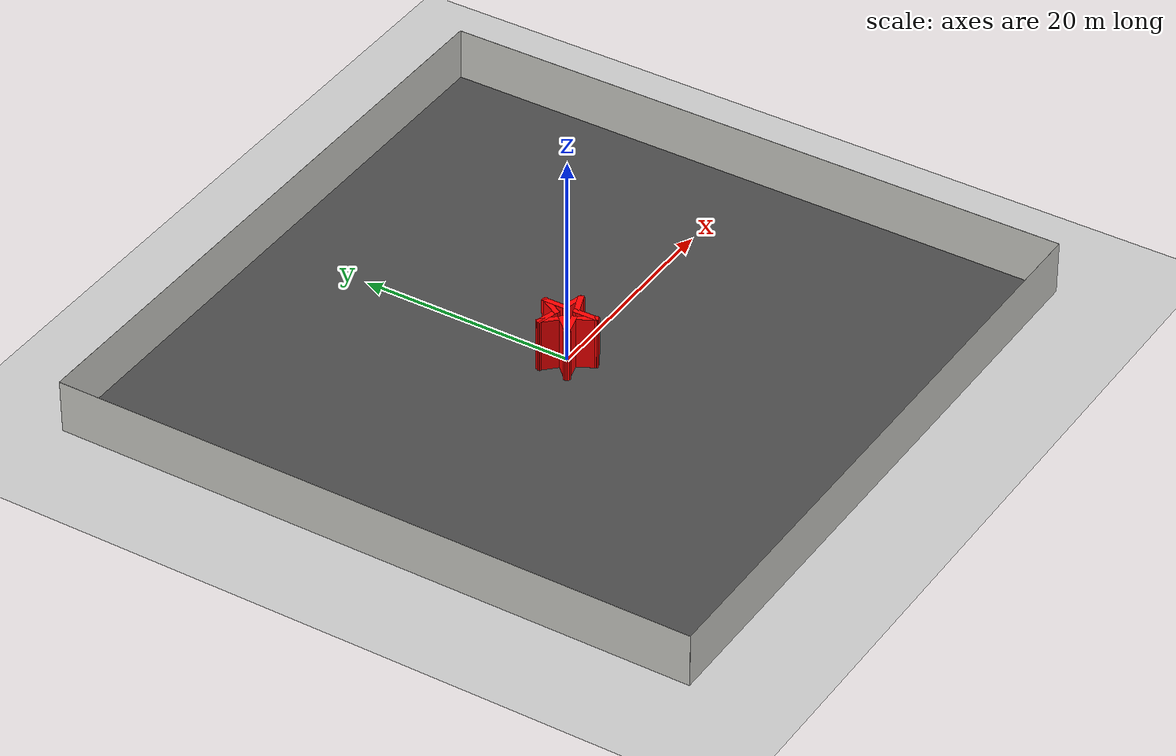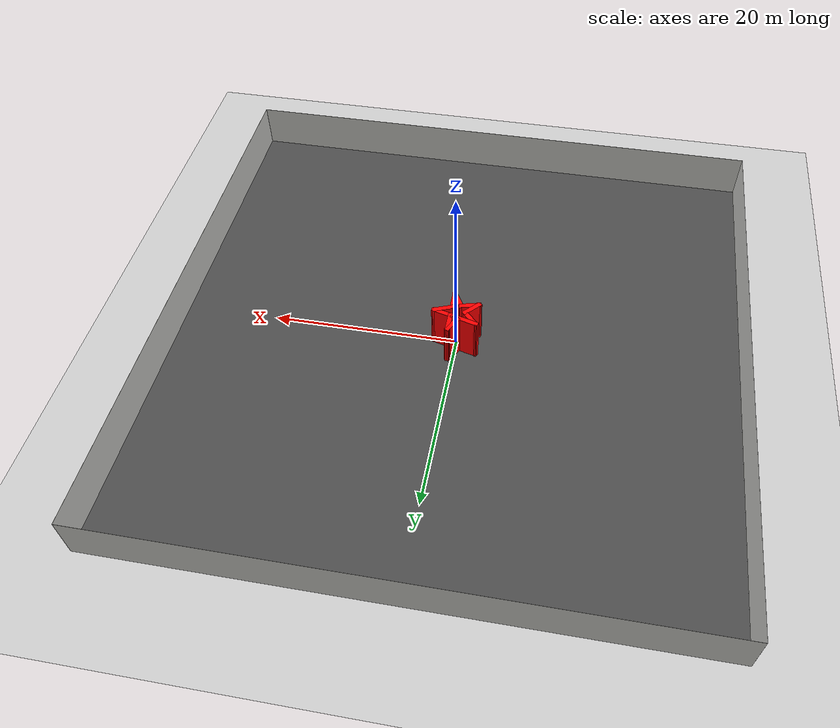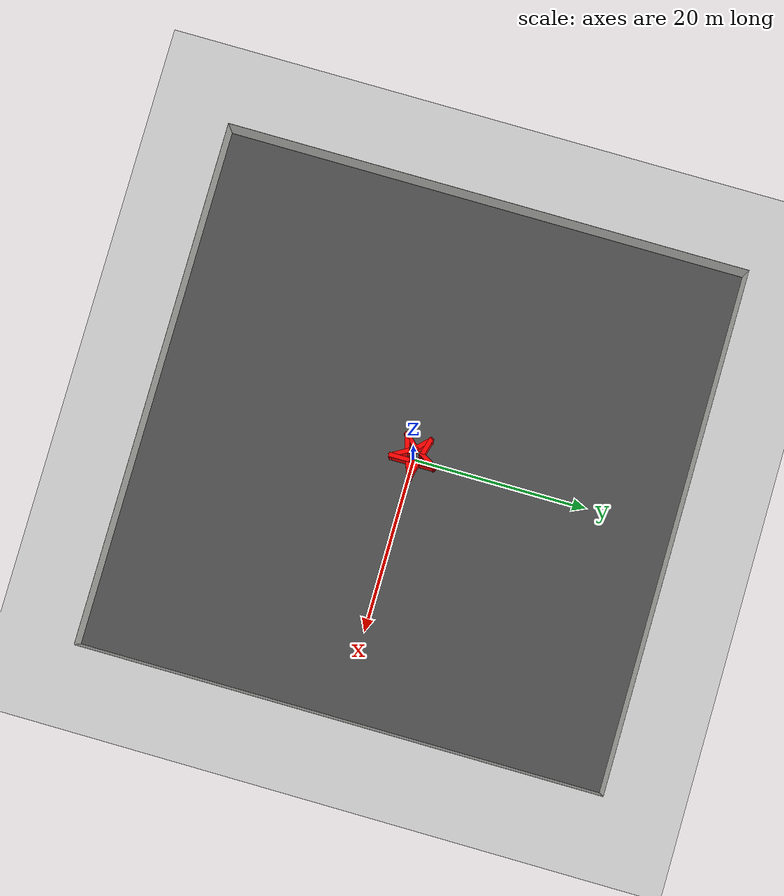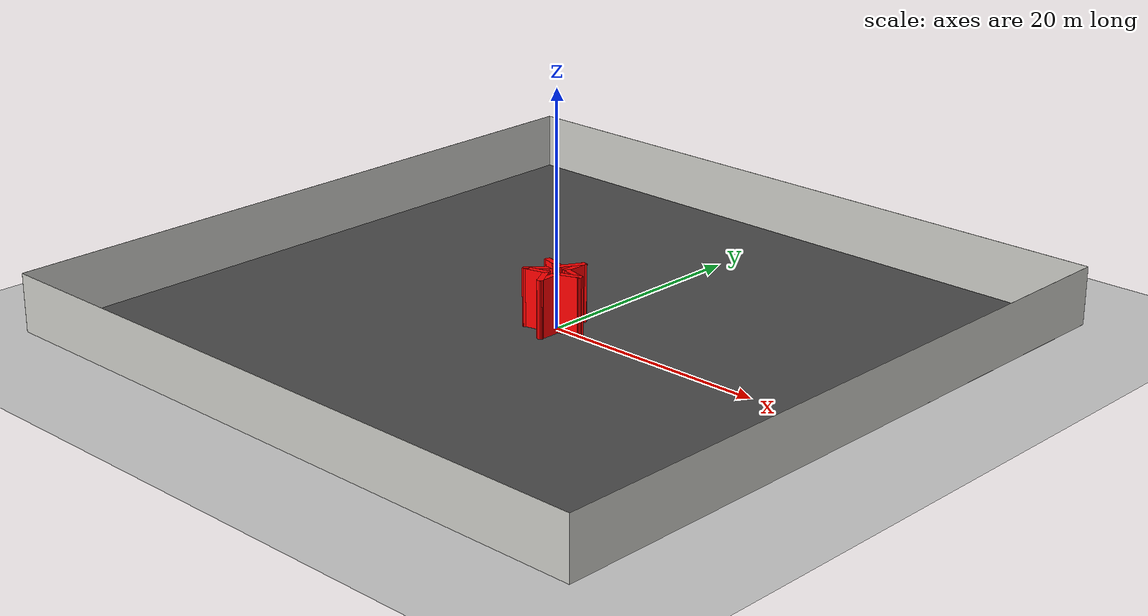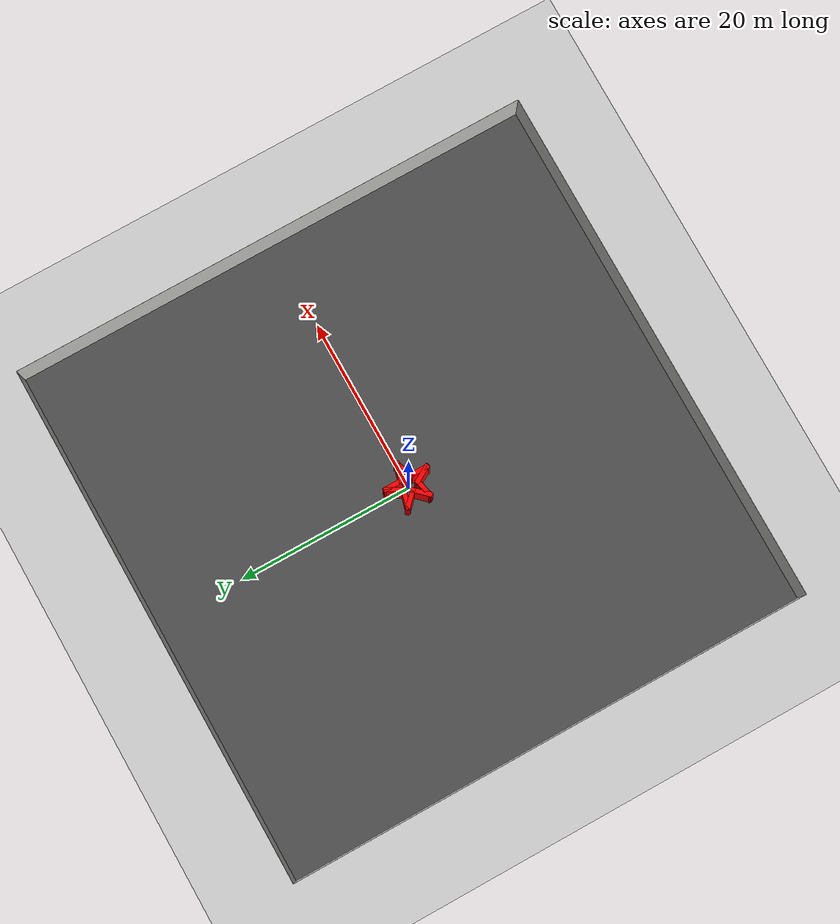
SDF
<sdf version="1.6">
 <world name="default">
  <light name="sun" type="directional">
   <pose>0 0 10 0 -0 0</pose>
   <diffuse>0.8 0.8 0.8 1</diffuse>
   <specular>0.1 0.1 0.1 1</specular>
   <attenuation>
    <range>1000</range>
    <constant>0.9</constant>
    <linear>0.01</linear>
    <quadratic>0.001</quadratic>
   </attenuation>
   <direction>-0.5 0.5 -1</direction>
  </light>
  <model name="ground_plane">
   <static>1</static>
   <link name="link">
    <collision name="collision">
     <geometry><plane><normal>0 0 1</normal><size>100 100</size></plane></geometry>
     <surface><friction><ode><mu>100</mu><mu2>50</mu2></ode></friction></surface>
    </collision>
    <visual name="visual">
     <cast_shadows>0</cast_shadows>
     <geometry><plane><normal>0 0 1</normal><size>100 100</size></plane></geometry>
     <material>
      <script><uri>file://media/materials/scripts/gazebo.material</uri><name>Gazebo/Grey</name></script>
     </material>
    </visual>
   </link>
  </model>
  <gravity>0 0 -9.8</gravity>
  <magnetic_field>6e-06 2.3e-05 -4.2e-05</magnetic_field>
  <atmosphere type="adiabatic"/>
  <physics name="default_physics" default="0" type="ode">
   <max_step_size>0.01</max_step_size>
   <real_time_factor>1</real_time_factor>
   <real_time_update_rate>100</real_time_update_rate>
  </physics>
  <scene><ambient>0.4 0.4 0.4 1</ambient><background>0.7 0.7 0.7 1</background><shadows>0</shadows></scene>
  <spherical_coordinates>
   <surface_model>EARTH_WGS84</surface_model>
   <latitude_deg>0</latitude_deg>
   <longitude_deg>0</longitude_deg>
   <elevation>0</elevation>
   <heading_deg>0</heading_deg>
  </spherical_coordinates>
  <model name="190815_star">
   <pose>2e-06 -6e-06 0 0 -0 -1.57</pose>
   <link name="Wall_26">
    <collision name="Wall_26_Collision">
     <geometry><box><size>2.34777 0.5 5</size></box></geometry>
     <pose>0 0 2.5 0 -0 0</pose>
    </collision>
    <visual name="Wall_26_Visual">
     <pose>0 0 2.5 0 -0 0</pose>
     <geometry><box><size>2.34777 0.5 5</size></box></geometry>
     <material>
      <script><uri>file://media/materials/scripts/gazebo.material</uri><name>Gazebo/Grey</name></script>
      <ambient>1 0 0 1</ambient>
     </material>
     <meta><layer>0</layer></meta>
    </visual>
    <pose>-0.351625 1.37609 0 0 -0 -1.82798</pose>
   </link>
   <link name="Wall_27">
    <collision name="Wall_27_Collision">
     <geometry><box><size>2.35 0.5 5</size></box></geometry>
     <pose>0 0 2.5 0 -0 0</pose>
    </collision>
    <visual name="Wall_27_Visual">
     <pose>0 0 2.5 0 -0 0</pose>
     <geometry><box><size>2.35 0.5 5</size></box></geometry>
     <material>
      <script><uri>file://media/materials/scripts/gazebo.material</uri><name>Gazebo/Grey</name></script>
      <ambient>1 0 0 1</ambient>
     </material>
     <meta><layer>0</layer></meta>
    </visual>
    <pose>-1.51162 0.482594 0 0 -0 3.14159</pose>
   </link>
   <link name="Wall_28">
    <collision name="Wall_28_Collision">
     <geometry><box><size>2.34987 0.5 5</size></box></geometry>
     <pose>0 0 2.5 0 -0 0</pose>
    </collision>
    <visual name="Wall_28_Visual">
     <pose>0 0 2.5 0 -0 0</pose>
     <geometry><box><size>2.34987 0.5 5</size></box></geometry>
     <material>
      <script><uri>file://media/materials/scripts/gazebo.material</uri><name>Gazebo/Grey</name></script>
      <ambient>1 0 0 1</ambient>
     </material>
     <meta><layer>0</layer></meta>
    </visual>
    <pose>-1.63562 0.020094 0 0 -0 -0.523639</pose>
   </link>
   <link name="Wall_29">
    <collision name="Wall_29_Collision">
     <geometry><box><size>2.35975 0.5 5</size></box></geometry>
     <pose>0 0 2.5 0 -0 0</pose>
    </collision>
    <visual name="Wall_29_Visual">
     <pose>0 0 2.5 0 -0 0</pose>
     <geometry><box><size>2.35975 0.5 5</size></box></geometry>
     <material>
      <script><uri>file://media/materials/scripts/gazebo.material</uri><name>Gazebo/Grey</name></script>
      <ambient>1 0 0 1</ambient>
     </material>
     <meta><layer>0</layer></meta>
    </visual>
    <pose>-1.07412 -1.34091 0 0 -0 -1.83129</pose>
   </link>
   <link name="Wall_30">
    <collision name="Wall_30_Collision">
     <geometry><box><size>2.35759 0.5 5</size></box></geometry>
     <pose>0 0 2.5 0 -0 0</pose>
    </collision>
    <visual name="Wall_30_Visual">
     <pose>0 0 2.5 0 -0 0</pose>
     <geometry><box><size>2.35759 0.5 5</size></box></geometry>
     <material>
      <script><uri>file://media/materials/scripts/gazebo.material</uri><name>Gazebo/Grey</name></script>
      <ambient>1 0 0 1</ambient>
     </material>
     <meta><layer>0</layer></meta>
    </visual>
    <pose>-0.659625 -1.57991 0 0 -0 0.789585</pose>
   </link>
   <link name="Wall_31">
    <collision name="Wall_31_Collision">
     <geometry><box><size>2.33721 0.5 5</size></box></geometry>
     <pose>0 0 2.5 0 -0 0</pose>
    </collision>
    <visual name="Wall_31_Visual">
     <pose>0 0 2.5 0 -0 0</pose>
     <geometry><box><size>2.33721 0.5 5</size></box></geometry>
     <material>
      <script><uri>file://media/materials/scripts/gazebo.material</uri><name>Gazebo/Grey</name></script>
      <ambient>1 0 0 1</ambient>
     </material>
     <meta><layer>0</layer></meta>
    </visual>
    <pose>0.663375 -1.54991 0 0 -0 -0.754988</pose>
   </link>
   <link name="Wall_32">
    <collision name="Wall_32_Collision">
     <geometry><box><size>2.33785 0.5 5</size></box></geometry>
     <pose>0 0 2.5 0 -0 0</pose>
    </collision>
    <visual name="Wall_32_Visual">
     <pose>0 0 2.5 0 -0 0</pose>
     <geometry><box><size>2.33785 0.5 5</size></box></geometry>
     <material>
      <script><uri>file://media/materials/scripts/gazebo.material</uri><name>Gazebo/Grey</name></script>
      <ambient>1 0 0 1</ambient>
     </material>
     <meta><layer>0</layer></meta>
    </visual>
    <pose>1.09788 -1.29091 0 0 -0 1.82884</pose>
   </link>
   <link name="Wall_33">
    <collision name="Wall_33_Collision">
     <geometry><box><size>2.31927 0.5 5</size></box></geometry>
     <pose>0 0 2.5 0 -0 0</pose>
    </collision>
    <visual name="Wall_33_Visual">
     <pose>0 0 2.5 0 -0 0</pose>
     <geometry><box><size>2.31927 0.5 5</size></box></geometry>
     <material>
      <script><uri>file://media/materials/scripts/gazebo.material</uri><name>Gazebo/Grey</name></script>
      <ambient>1 0 0 1</ambient>
     </material>
     <meta><layer>0</layer></meta>
    </visual>
    <pose>1.64987 0.054594 0 0 -0 0.526373</pose>
   </link>
   <link name="Wall_34">
    <collision name="Wall_34_Collision">
     <geometry><box><size>2.36903 0.5 5</size></box></geometry>
     <pose>0 0 2.5 0 -0 0</pose>
    </collision>
    <visual name="Wall_34_Visual">
     <pose>0 0 2.5 0 -0 0</pose>
     <geometry><box><size>2.36903 0.5 5</size></box></geometry>
     <material>
      <script><uri>file://media/materials/scripts/gazebo.material</uri><name>Gazebo/Grey</name></script>
      <ambient>1 0 0 1</ambient>
     </material>
     <meta><layer>0</layer></meta>
    </visual>
    <pose>1.50188 0.506594 0 0 -0 -3.13624</pose>
   </link>
   <link name="Wall_35">
    <collision name="Wall_35_Collision">
     <geometry><box><size>2.3957 0.5 5</size></box></geometry>
     <pose>0 0 2.5 0 -0 0</pose>
    </collision>
    <visual name="Wall_35_Visual">
     <pose>0 0 2.5 0 -0 0</pose>
     <geometry><box><size>2.3957 0.5 5</size></box></geometry>
     <material>
      <script><uri>file://media/materials/scripts/gazebo.material</uri><name>Gazebo/Grey</name></script>
      <ambient>1 0 0 1</ambient>
     </material>
     <meta><layer>0</layer></meta>
    </visual>
    <pose>0.225375 1.38559 0 0 -0 1.93994</pose>
   </link>
   <static>1</static>
  </model>
  <model name="wall_60m">
   <link name="Wall_10">
    <collision name="Wall_10_Collision">
     <geometry><box><size>60.01 0.01 5</size></box></geometry>
     <pose>0 0 2.5 0 -0 0</pose>
    </collision>
    <visual name="Wall_10_Visual">
     <pose>0 0 2.5 0 -0 0</pose>
     <geometry><box><size>60.01 0.01 5</size></box></geometry>
     <material>
      <script><uri>file://media/materials/scripts/gazebo.material</uri><name>Gazebo/CeilingTiled</name></script>
      <ambient>1 1 1 1</ambient>
     </material>
     <meta><layer>0</layer></meta>
    </visual>
    <pose>-0.0175 30 0 0 -0 0</pose>
   </link>
   <link name="Wall_11">
    <collision name="Wall_11_Collision">
     <geometry><box><size>60.01 0.01 5</size></box></geometry>
     <pose>0 0 2.5 0 -0 0</pose>
    </collision>
    <visual name="Wall_11_Visual">
     <pose>0 0 2.5 0 -0 0</pose>
     <geometry><box><size>60.01 0.01 5</size></box></geometry>
     <material>
      <script><uri>file://media/materials/scripts/gazebo.material</uri><name>Gazebo/CeilingTiled</name></script>
      <ambient>1 1 1 1</ambient>
     </material>
     <meta><layer>0</layer></meta>
    </visual>
    <pose>30 0 0 0 -0 -1.57021</pose>
   </link>
   <link name="Wall_12">
    <collision name="Wall_12_Collision">
     <geometry><box><size>60.045 0.01 5</size></box></geometry>
     <pose>0 0 2.5 0 -0 0</pose>
    </collision>
    <visual name="Wall_12_Visual">
     <pose>0 0 2.5 0 -0 0</pose>
     <geometry><box><size>60.045 0.01 5</size></box></geometry>
     <material>
      <script><uri>file://media/materials/scripts/gazebo.material</uri><name>Gazebo/CeilingTiled</name></script>
      <ambient>1 1 1 1</ambient>
     </material>
     <meta><layer>0</layer></meta>
    </visual>
    <pose>0 -30 0 0 -0 3.14159</pose>
   </link>
   <link name="Wall_13">
    <collision name="Wall_13_Collision">
     <geometry><box><size>60.01 0.01 5</size></box></geometry>
     <pose>0 0 2.5 0 -0 0</pose>
    </collision>
    <visual name="Wall_13_Visual">
     <pose>0 0 2.5 0 -0 0</pose>
     <geometry><box><size>60.01 0.01 5</size></box></geometry>
     <material>
      <script><uri>file://media/materials/scripts/gazebo.material</uri><name>Gazebo/CeilingTiled</name></script>
      <ambient>1 1 1 1</ambient>
     </material>
     <meta><layer>0</layer></meta>
    </visual>
    <pose>-30.0175 0 0 0 -0 1.5708</pose>
   </link>
   <static>1</static>
  </model>
  <model name="floor_60m">
   <link name="link">
    <inertial>
     <mass>1</mass>
     <inertia><ixx>1</ixx><ixy>0</ixy><ixz>0</ixz><iyy>1</iyy><iyz>0</iyz><izz>1</izz></inertia>
    </inertial>
    <visual name="visual">
     <cast_shadows>0</cast_shadows>
     <geometry><box><size>60 60 0.01</size></box></geometry>
     <material>
      <script>
       <uri>model://asphalt_plane/materials/scripts</uri>
       <uri>model://asphalt_plane/materials/textures</uri>
       <name>vrc/asphalt</name>
      </script>
      <ambient>0.45 0.36 0.19 0.5</ambient>
      <diffuse>0.45 0.36 0.19 0.5</diffuse>
      <specular>0.45 0.36 0.19 0.5</specular>
      <emissive>0.45 0.36 0.19 0.5</emissive>
      <shader type="vertex"><normal_map>__default__</normal_map></shader>
     </material>
    </visual>
    <collision name="collision">
     <geometry><box><size>60 60 0.01</size></box></geometry>
     <surface>
      <friction>
       <ode><mu>1</mu><mu2>1</mu2><fdir1>0 0 0</fdir1><slip1>0</slip1><slip2>0</slip2></ode>
       <torsional>
        <coefficient>1</coefficient>
        <patch_radius>0</patch_radius>
        <surface_radius>0</surface_radius>
        <use_patch_radius>1</use_patch_radius>
        <ode><slip>0</slip></ode>
       </torsional>
      </friction>
      <bounce><restitution_coefficient>0</restitution_coefficient><threshold>1e+06</threshold></bounce>
      <contact>
       <collide_without_contact>0</collide_without_contact>
       <collide_without_contact_bitmask>1</collide_without_contact_bitmask>
       <collide_bitmask>1</collide_bitmask>
       <ode>
        <soft_cfm>0</soft_cfm>
        <soft_erp>0.2</soft_erp>
        <kp>1e+13</kp>
        <kd>1</kd>
        <max_vel>0.01</max_vel>
        <min_depth>0</min_depth>
       </ode>
       <bullet>
        <split_impulse>1</split_impulse>
        <split_impulse_penetration_threshold>-0.01</split_impulse_penetration_threshold>
        <soft_cfm>0</soft_cfm>
        <soft_erp>0.2</soft_erp>
        <kp>1e+13</kp>
        <kd>1</kd>
       </bullet>
      </contact>
     </surface>
    </collision>
   </link>
   <static>1</static>
   <pose>0 0 0.01 0 -0 0</pose>
  </model>
 </world>
</sdf>
